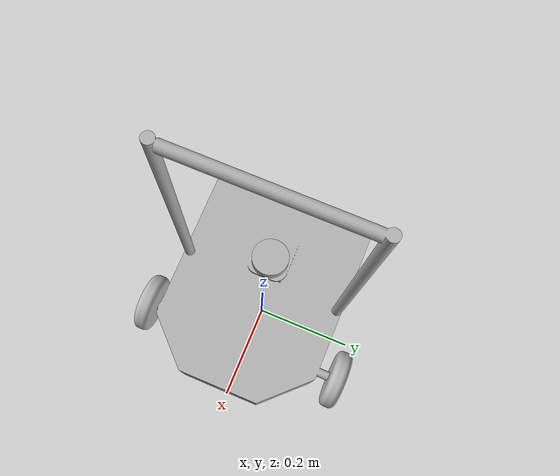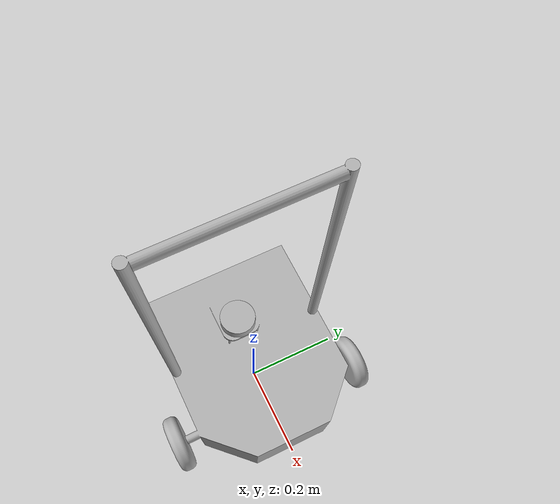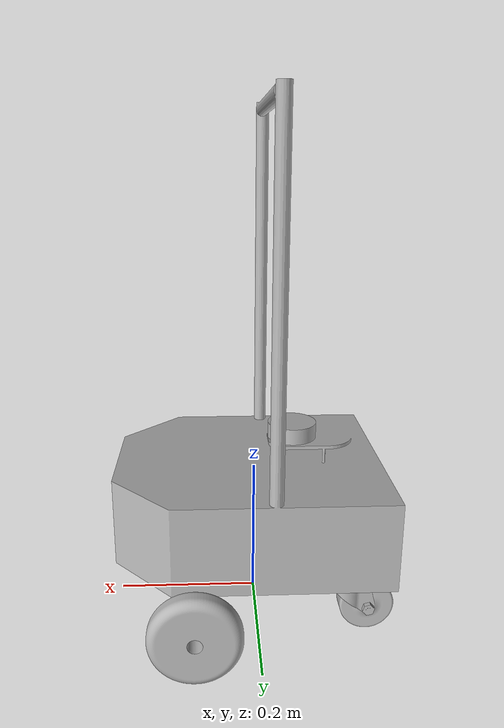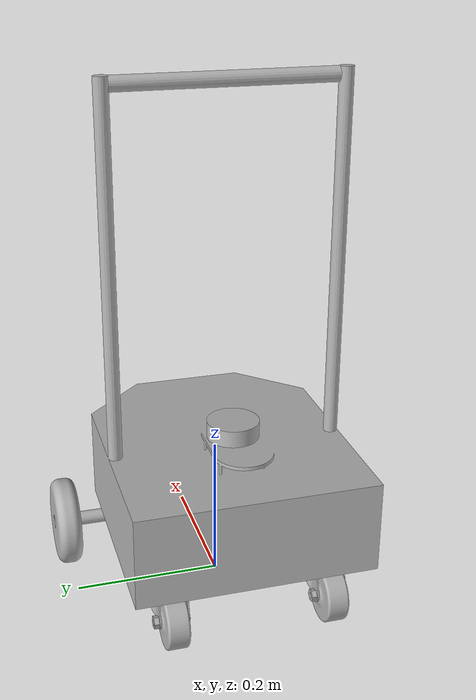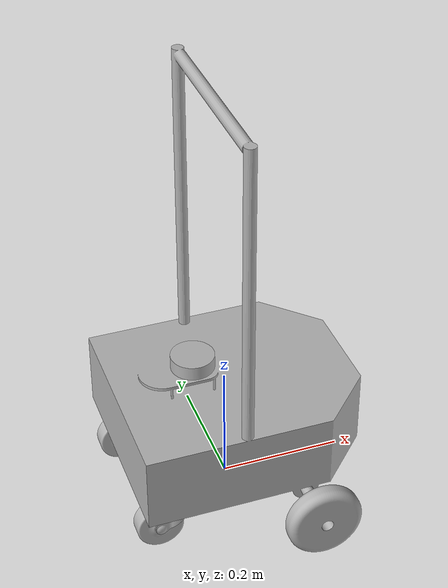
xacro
<?xml version="1.0" ?>
<robot name="gaitway" xmlns:xacro="http://www.ros.org/wiki/xacro">

<xacro:include filename="$(find gaitway_description)/urdf/materials.xacro" />
<xacro:include filename="$(find gaitway_description)/urdf/gaitway.trans" />
<xacro:include filename="$(find gaitway_description)/urdf/gaitway.gazebo" />
<link name="base_link">
  <inertial>
    <origin xyz="-0.009947707420097355 -0.008866599387150821 0.2729505766530512" rpy="0 0 0"/>
    <mass value="7.958411472154008"/>
    <inertia ixx="0.478326" iyy="0.431105" izz="0.176408" ixy="-0.00031" iyz="0.000136" ixz="0.016093"/>
  </inertial>
  <visual>
    <origin xyz="0 0 0" rpy="0 0 0"/>
    <geometry>
      <mesh filename="package://gaitway_description/meshes/base_link.stl" scale="0.001 0.001 0.001"/>
    </geometry>
    <material name="silver"/>
  </visual>
  <collision>
    <origin xyz="0 0 0" rpy="0 0 0"/>
    <geometry>
      <mesh filename="package://gaitway_description/meshes/base_link.stl" scale="0.001 0.001 0.001"/>
    </geometry>
  </collision>
</link>

<link name="base_laser_1">
  <inertial>
    <origin xyz="0.02629998058673555 -2.865744605159981e-09 0.011509974478761065" rpy="0 0 0"/>
    <mass value="0.08426587003494036"/>
    <inertia ixx="3e-05" iyy="3e-05" izz="5.2e-05" ixy="-0.0" iyz="-0.0" ixz="-0.0"/>
  </inertial>
  <visual>
    <origin xyz="0.082 0.009 -0.2425" rpy="0 0 0"/>
    <geometry>
      <mesh filename="package://gaitway_description/meshes/base_laser_1.stl" scale="0.001 0.001 0.001"/>
    </geometry>
    <material name="silver"/>
  </visual>
  <collision>
    <origin xyz="0.082 0.009 -0.2425" rpy="0 0 0"/>
    <geometry>
      <mesh filename="package://gaitway_description/meshes/base_laser_1.stl" scale="0.001 0.001 0.001"/>
    </geometry>
  </collision>
</link>

<link name="left_wheel_1">
  <inertial>
    <origin xyz="8.627076207579076e-08 0.016500452614946398 1.3877787807814457e-17" rpy="0 0 0"/>
    <mass value="0.042330100058116465"/>
    <inertia ixx="4.2e-05" iyy="7.7e-05" izz="4.2e-05" ixy="0.0" iyz="0.0" ixz="-0.0"/>
  </inertial>
  <visual>
    <origin xyz="-0.08496 -0.185766 -0.061033" rpy="0 0 0"/>
    <geometry>
      <mesh filename="package://gaitway_description/meshes/left_wheel_1.stl" scale="0.001 0.001 0.001"/>
    </geometry>
    <material name="silver"/>
  </visual>
  <collision>
    <origin xyz="-0.08496 -0.185766 -0.061033" rpy="0 0 0"/>
    <geometry>
      <mesh filename="package://gaitway_description/meshes/left_wheel_1.stl" scale="0.001 0.001 0.001"/>
    </geometry>
  </collision>
</link>

<link name="right_wheel_1">
  <inertial>
    <origin xyz="2.2330004806336845e-07 -0.016499955145053563 2.075746751289964e-07" rpy="0 0 0"/>
    <mass value="0.3280582754504032"/>
    <inertia ixx="0.000325" iyy="0.000595" izz="0.000325" ixy="0.0" iyz="0.0" ixz="-0.0"/>
  </inertial>
  <visual>
    <origin xyz="-0.08496 0.204117 -0.061033" rpy="0 0 0"/>
    <geometry>
      <mesh filename="package://gaitway_description/meshes/right_wheel_1.stl" scale="0.001 0.001 0.001"/>
    </geometry>
    <material name="silver"/>
  </visual>
  <collision>
    <origin xyz="-0.08496 0.204117 -0.061033" rpy="0 0 0"/>
    <geometry>
      <mesh filename="package://gaitway_description/meshes/right_wheel_1.stl" scale="0.001 0.001 0.001"/>
    </geometry>
  </collision>
</link>

<link name="mount1_1">
  <inertial>
    <origin xyz="0.0019999855840152347 -0.0020002724462876292 -0.0011499999999999982" rpy="0 0 0"/>
    <mass value="0.07023170190652235"/>
    <inertia ixx="1.9e-05" iyy="2.7e-05" izz="4.6e-05" ixy="0.0" iyz="0.0" ixz="-0.0"/>
  </inertial>
  <visual>
    <origin xyz="0.124019 -0.100445 -0.08599" rpy="0 0 0"/>
    <geometry>
      <mesh filename="package://gaitway_description/meshes/mount1_1.stl" scale="0.001 0.001 0.001"/>
    </geometry>
    <material name="silver"/>
  </visual>
  <collision>
    <origin xyz="0.124019 -0.100445 -0.08599" rpy="0 0 0"/>
    <geometry>
      <mesh filename="package://gaitway_description/meshes/mount1_1.stl" scale="0.001 0.001 0.001"/>
    </geometry>
  </collision>
</link>

<link name="left_arm_1">
  <inertial>
    <origin xyz="-0.008538101180084093 0.0010392762286639268 -0.016805409202448912" rpy="0 0 0"/>
    <mass value="0.18456574532837225"/>
    <inertia ixx="0.000102" iyy="0.000107" izz="9.9e-05" ixy="4e-06" iyz="6e-06" ixz="-3.5e-05"/>
  </inertial>
  <visual>
    <origin xyz="0.122019 -0.098445 -0.08369" rpy="0 0 0"/>
    <geometry>
      <mesh filename="package://gaitway_description/meshes/left_arm_1.stl" scale="0.001 0.001 0.001"/>
    </geometry>
    <material name="silver"/>
  </visual>
  <collision>
    <origin xyz="0.122019 -0.098445 -0.08369" rpy="0 0 0"/>
    <geometry>
      <mesh filename="package://gaitway_description/meshes/left_arm_1.stl" scale="0.001 0.001 0.001"/>
    </geometry>
  </collision>
</link>

<link name="left_caster_1">
  <inertial>
    <origin xyz="-7.406673280252463e-08 -2.724463108866315e-07 -6.25848733948331e-10" rpy="0 0 0"/>
    <mass value="0.12145663039519977"/>
    <inertia ixx="5.1e-05" iyy="8.3e-05" izz="5.1e-05" ixy="0.0" iyz="0.0" ixz="-0.0"/>
  </inertial>
  <visual>
    <origin xyz="0.151362 -0.098445 -0.03769" rpy="0 0 0"/>
    <geometry>
      <mesh filename="package://gaitway_description/meshes/left_caster_1.stl" scale="0.001 0.001 0.001"/>
    </geometry>
    <material name="silver"/>
  </visual>
  <collision>
    <origin xyz="0.151362 -0.098445 -0.03769" rpy="0 0 0"/>
    <geometry>
      <mesh filename="package://gaitway_description/meshes/left_caster_1.stl" scale="0.001 0.001 0.001"/>
    </geometry>
  </collision>
</link>

<link name="mount2_1">
  <inertial>
    <origin xyz="0.0019999855840152347 0.00150042467371235 -0.0011499999999999982" rpy="0 0 0"/>
    <mass value="0.07023170190652234"/>
    <inertia ixx="1.9e-05" iyy="2.7e-05" izz="4.6e-05" ixy="0.0" iyz="0.0" ixz="-0.0"/>
  </inertial>
  <visual>
    <origin xyz="0.124019 0.118505 -0.08599" rpy="0 0 0"/>
    <geometry>
      <mesh filename="package://gaitway_description/meshes/mount2_1.stl" scale="0.001 0.001 0.001"/>
    </geometry>
    <material name="silver"/>
  </visual>
  <collision>
    <origin xyz="0.124019 0.118505 -0.08599" rpy="0 0 0"/>
    <geometry>
      <mesh filename="package://gaitway_description/meshes/mount2_1.stl" scale="0.001 0.001 0.001"/>
    </geometry>
  </collision>
</link>

<link name="right_arm_1">
  <inertial>
    <origin xyz="-0.008538101180081456 0.0010399704130064635 -0.016805409202450425" rpy="0 0 0"/>
    <mass value="0.1845657453283077"/>
    <inertia ixx="0.000102" iyy="0.000107" izz="9.9e-05" ixy="4e-06" iyz="6e-06" ixz="-3.5e-05"/>
  </inertial>
  <visual>
    <origin xyz="0.122019 0.117005 -0.08369" rpy="0 0 0"/>
    <geometry>
      <mesh filename="package://gaitway_description/meshes/right_arm_1.stl" scale="0.001 0.001 0.001"/>
    </geometry>
    <material name="silver"/>
  </visual>
  <collision>
    <origin xyz="0.122019 0.117005 -0.08369" rpy="0 0 0"/>
    <geometry>
      <mesh filename="package://gaitway_description/meshes/right_arm_1.stl" scale="0.001 0.001 0.001"/>
    </geometry>
  </collision>
</link>

<link name="right_caster_1">
  <inertial>
    <origin xyz="-7.406673280252463e-08 4.246736891172498e-07 -6.258487270094371e-10" rpy="0 0 0"/>
    <mass value="0.1214566303951998"/>
    <inertia ixx="5.1e-05" iyy="8.3e-05" izz="5.1e-05" ixy="0.0" iyz="0.0" ixz="0.0"/>
  </inertial>
  <visual>
    <origin xyz="0.151362 0.117005 -0.03769" rpy="0 0 0"/>
    <geometry>
      <mesh filename="package://gaitway_description/meshes/right_caster_1.stl" scale="0.001 0.001 0.001"/>
    </geometry>
    <material name="silver"/>
  </visual>
  <collision>
    <origin xyz="0.151362 0.117005 -0.03769" rpy="0 0 0"/>
    <geometry>
      <mesh filename="package://gaitway_description/meshes/right_caster_1.stl" scale="0.001 0.001 0.001"/>
    </geometry>
  </collision>
</link>

<link name="imu_link">
  <visual>
    <geometry>
      <box size="0.01 0.01 0.01"/>
    </geometry>
  </visual>
</link>

<joint name="imu_joint" type="fixed">
  <parent link="base_link"/>
  <child link="imu_link"/>
  <origin xyz="0 0 0.1" rpy="0 0 0"/>
</joint>

<joint name="rig1" type="fixed">
  <origin xyz="-0.082 -0.009 0.2425" rpy="0 0 0"/>
  <parent link="base_link"/>
  <child link="base_laser_1"/>
</joint>

<joint name="rev1" type="continuous">
  <origin xyz="0.08496 0.185766 0.061033" rpy="0 0 0"/>
  <parent link="base_link"/>
  <child link="left_wheel_1"/>
  <axis xyz="0.0 1.0 0.0"/>
</joint>

<joint name="rev2" type="continuous">
  <origin xyz="0.08496 -0.204117 0.061033" rpy="0 0 0"/>
  <parent link="base_link"/>
  <child link="right_wheel_1"/>
  <axis xyz="0.0 1.0 0.0"/>
</joint>

<joint name="rig2" type="fixed">
  <origin xyz="-0.124019 0.100445 0.08599" rpy="0 0 0"/>
  <parent link="base_link"/>
  <child link="mount1_1"/>
</joint>

<joint name="rev3" type="continuous">
  <origin xyz="0.002 -0.002 -0.0023" rpy="0 0 0"/>
  <parent link="mount1_1"/>
  <child link="left_arm_1"/>
  <axis xyz="0.0 0.0 -1.0"/>
</joint>

<joint name="rev4" type="continuous">
  <origin xyz="-0.029343 0.0 -0.046" rpy="0 0 0"/>
  <parent link="left_arm_1"/>
  <child link="left_caster_1"/>
  <axis xyz="0.0 1.0 -0.0"/>
</joint>

<joint name="rig3" type="fixed">
  <origin xyz="-0.124019 -0.118505 0.08599" rpy="0 0 0"/>
  <parent link="base_link"/>
  <child link="mount2_1"/>
</joint>

<joint name="rev5" type="continuous">
  <origin xyz="0.002 0.0015 -0.0023" rpy="0 0 0"/>
  <parent link="mount2_1"/>
  <child link="right_arm_1"/>
  <axis xyz="0.0 0.0 -1.0"/>
</joint>

<joint name="rev6" type="continuous">
  <origin xyz="-0.029343 0.0 -0.046" rpy="0 0 0"/>
  <parent link="right_arm_1"/>
  <child link="right_caster_1"/>
  <axis xyz="0.0 1.0 -0.0"/>
</joint>

</robot>

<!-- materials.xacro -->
<robot name="gaitway" xmlns:xacro="http://www.ros.org/wiki/xacro" >

<material name="silver">
  <color rgba="0.700 0.700 0.700 1.000"/>
</material>

</robot>

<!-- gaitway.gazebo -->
<robot name="gaitway" xmlns:xacro="http://www.ros.org/wiki/xacro" >

<xacro:property name="body_color" value="Gazebo/Silver" />

<gazebo>
  <plugin name="control" filename="libgazebo_ros_control.so"/>
</gazebo>
<gazebo reference="base_link">
  <material>${body_color}</material>
  <mu1>0.2</mu1>
  <mu2>0.2</mu2>
  <selfCollide>true</selfCollide>
  <gravity>true</gravity>
</gazebo>

<gazebo reference="base_laser_1">
  <material>${body_color}</material>
  <mu1>0.2</mu1>
  <mu2>0.2</mu2>
  <selfCollide>true</selfCollide>
</gazebo>

<gazebo reference="left_wheel_1">
  <material>${body_color}</material>
  <mu1>0.2</mu1>
  <mu2>0.2</mu2>
  <selfCollide>true</selfCollide>
</gazebo>

<gazebo reference="right_wheel_1">
  <material>${body_color}</material>
  <mu1>0.2</mu1>
  <mu2>0.2</mu2>
  <selfCollide>true</selfCollide>
</gazebo>

<gazebo reference="mount1_1">
  <material>${body_color}</material>
  <mu1>0.2</mu1>
  <mu2>0.2</mu2>
  <selfCollide>true</selfCollide>
</gazebo>

<gazebo reference="left_arm_1">
  <material>${body_color}</material>
  <mu1>0.2</mu1>
  <mu2>0.2</mu2>
  <selfCollide>true</selfCollide>
</gazebo>

<gazebo reference="left_caster_1">
  <material>${body_color}</material>
  <mu1>0.2</mu1>
  <mu2>0.2</mu2>
  <selfCollide>true</selfCollide>
</gazebo>

<gazebo reference="mount2_1">
  <material>${body_color}</material>
  <mu1>0.2</mu1>
  <mu2>0.2</mu2>
  <selfCollide>true</selfCollide>
</gazebo>

<gazebo reference="right_arm_1">
  <material>${body_color}</material>
  <mu1>0.2</mu1>
  <mu2>0.2</mu2>
  <selfCollide>true</selfCollide>
</gazebo>

<gazebo reference="right_caster_1">
  <material>${body_color}</material>
  <mu1>0.2</mu1>
  <mu2>0.2</mu2>
  <selfCollide>true</selfCollide>
</gazebo>

<gazebo>
  <plugin name="differential_drive_controller" filename="libgazebo_ros_diff_drive.so">

    <!-- Plugin update rate in Hz -->
    <updateRate>100</updateRate>

    <!-- Name of left joint, defaults to `left_joint` -->
    <leftJoint>rev1</leftJoint>

    <!-- Name of right joint, defaults to `right_joint` -->
    <rightJoint>rev2</rightJoint>

    <!-- The distance from the center of one wheel to the other, in meters, defaults to 0.34 m -->
    <wheelSeparation>0.2</wheelSeparation>

    <!-- Diameter of the wheels, in meters, defaults to 0.15 m -->
    <wheelDiameter>0.12</wheelDiameter>

    <!-- Wheel acceleration, in rad/s^2, defaults to 0.0 rad/s^2 -->
    <wheelAcceleration>1.0</wheelAcceleration>

    <!-- Maximum torque which the wheels can produce, in Nm, defaults to 5 Nm -->
    <wheelTorque>26</wheelTorque>

    <!-- Topic to receive geometry_msgs/Twist message commands, defaults to `cmd_vel` -->
    <commandTopic>cmd_vel</commandTopic>

    <!-- Topic to publish nav_msgs/Odometry messages, defaults to `odom` -->
    <odometryTopic>odom</odometryTopic>

    <!-- Odometry frame, defaults to `odom` -->
    <odometryFrame>odom</odometryFrame>

    <!-- Robot frame to calculate odometry from, defaults to `base_footprint` -->
    <robotBaseFrame>base_link</robotBaseFrame>

    <!-- Odometry source, 0 for ENCODER, 1 for WORLD, defaults to WORLD -->
    <odometrySource>1</odometrySource>

    <!-- Set to true to publish transforms for the wheel links, defaults to false -->
    <publishWheelTF>false</publishWheelTF>

    <!-- Set to true to publish transforms for the odometry, defaults to true -->
    <publishOdom>true</publishOdom>

    <!-- Set to true to publish sensor_msgs/JointState on /joint_states for the wheel joints, defaults to false -->
    <publishWheelJointState>false</publishWheelJointState>

    <!-- Set to true to swap right and left wheels, defaults to true -->
    <legacyMode>false</legacyMode>
  </plugin>
</gazebo>

<!-- hokuyo -->
  <gazebo reference="base_laser_1">
    <sensor type="ray" name="head_hokuyo_sensor">
      <pose>0 0 0 0 0 0</pose>
      <visualize>true</visualize>
      <update_rate>40</update_rate>
      <ray>
        <scan>
          <horizontal>
            <samples>360</samples>
            <resolution>1</resolution>
            <min_angle>-3.14</min_angle>
            <max_angle>3.14</max_angle>
          </horizontal>
        </scan>
        <range>
          <min>0.3</min>
          <max>12</max>
          <resolution>0.01</resolution>
        </range>
        <noise>
        	<type>gaussian</type>
        	<mean>0.0</mean>
        	<stddev>0.01</stddev>
        </noise>
      </ray>
      <plugin name="gazebo_ros_head_rplidar_controller" filename="libgazebo_ros_laser.so">
        <topicName>/scan</topicName>
        <frameName>base_laser_1</frameName>
      </plugin>
    </sensor>
  </gazebo>

  <gazebo reference="imu_link">
    <gravity>true</gravity>
    <sensor name="imu_sensor" type="imu">
      <always_on>true</always_on>
      <update_rate>100</update_rate>
      <visualize>true</visualize>
      <topic>__default_topic__</topic>
      <plugin filename="libgazebo_ros_imu_sensor.so" name="imu_plugin">
        <topicName>imu</topicName>
        <bodyName>imu_link</bodyName>
        <updateRateHZ>10.0</updateRateHZ>
        <gaussianNoise>0.0</gaussianNoise>
        <xyzOffset>0 0 0</xyzOffset>
        <rpyOffset>0 0 0</rpyOffset>
        <frameName>imu_link</frameName>
        <initialOrientationAsReference>false</initialOrientationAsReference>
      </plugin>
      <pose>0 0 0 0 0 0</pose>
    </sensor>
  </gazebo>

</robot>
